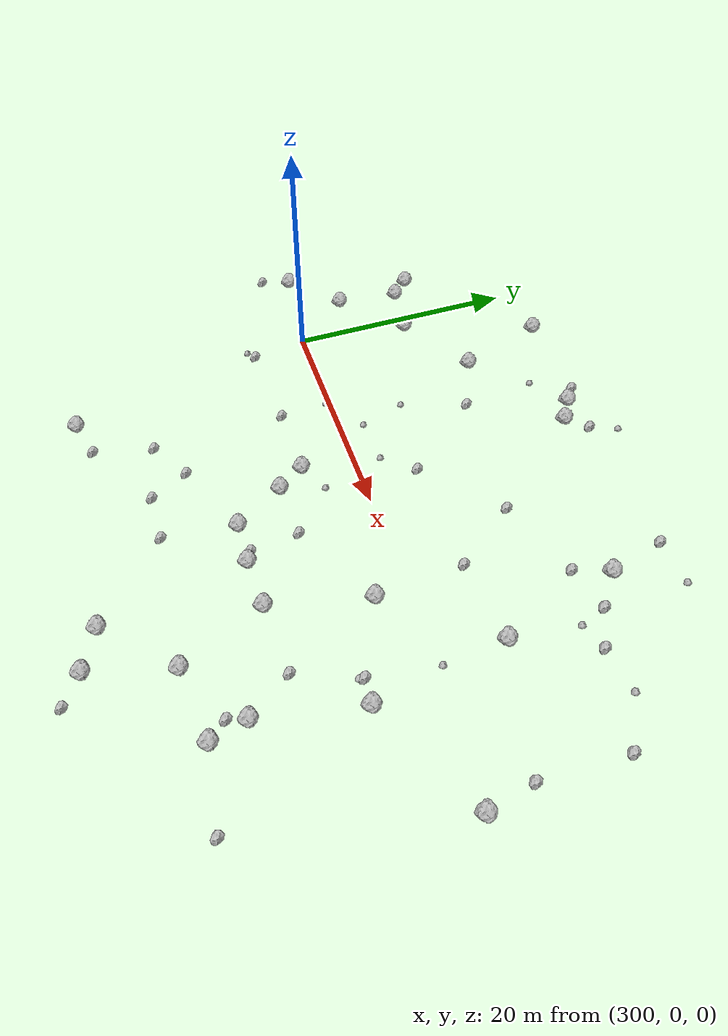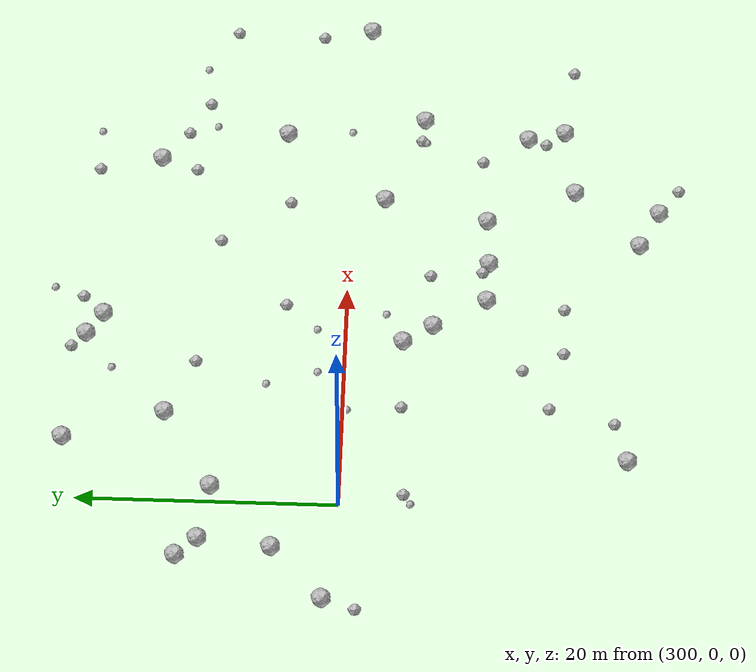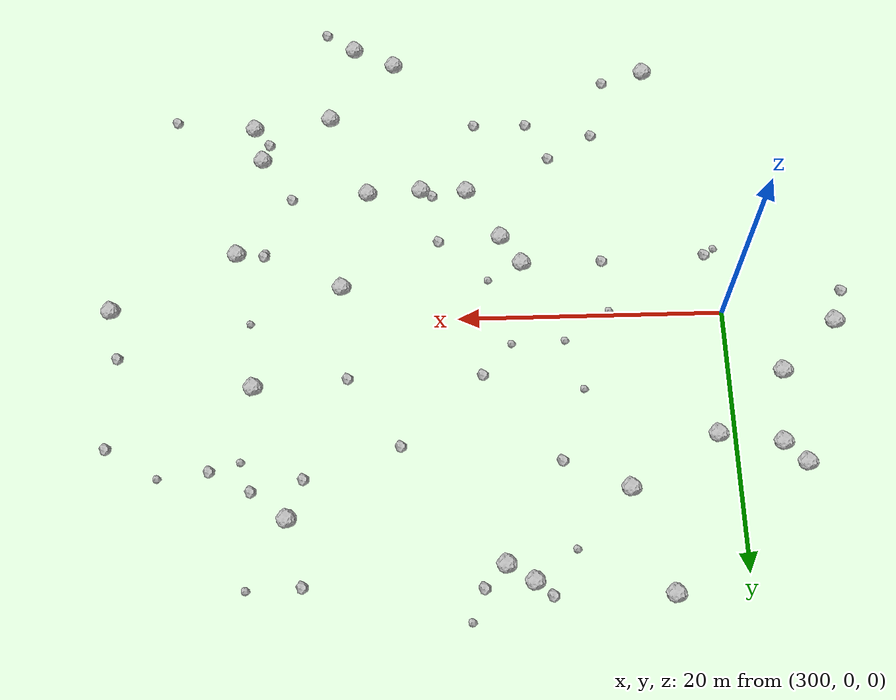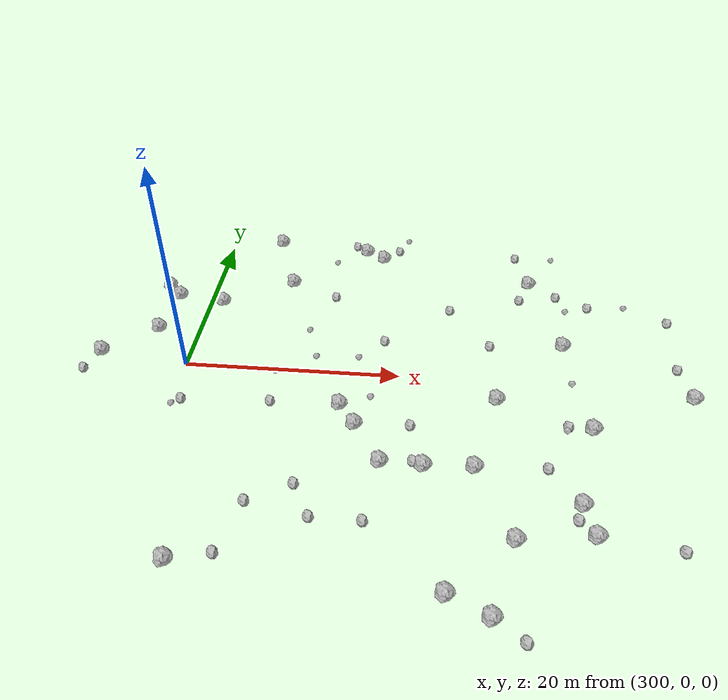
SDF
<sdf version="1.6">
 <world name="default">
  <include><uri>model://sun</uri></include>
  <model name="rock1_8_2">
   <include><uri>model://rock1</uri><pose>307.8987200101054 13.677612245132515 0.5 0 0 0</pose></include>
  </model>
  <model name="rock1_8_3">
   <include><uri>model://rock1</uri><pose>335.30053538238235 -14.121122902779817 0.5 0 0 0</pose></include>
  </model>
  <model name="rock1_8_4">
   <include><uri>model://rock1</uri><pose>322.7328655205642 -11.065780976872425 0.5 0 0 0</pose></include>
  </model>
  <model name="rock1_8_5">
   <include><uri>model://rock1</uri><pose>335.2609601538134 5.341475340433618 0.5 0 0 0</pose></include>
  </model>
  <model name="rock1_8_6">
   <include><uri>model://rock1</uri><pose>316.6007874839098 -6.777972014625714 0.5 0 0 0</pose></include>
  </model>
  <model name="rock1_8_7">
   <include><uri>model://rock1</uri><pose>346.3067477297315 -1.1418352276143438 0.5 0 0 0</pose></include>
  </model>
  <model name="rock1_8_8">
   <include><uri>model://rock1</uri><pose>315.05094061615404 20.238163077797978 0.5 0 0 0</pose></include>
  </model>
  <model name="rock1_8_9">
   <include><uri>model://rock1</uri><pose>319.155938399444 -10.931510715643839 0.5 0 0 0</pose></include>
  </model>
  <model name="rock1_8_10">
   <include><uri>model://rock1</uri><pose>316.98939838749845 19.00576557208172 0.5 0 0 0</pose></include>
  </model>
  <model name="rock1_8_11">
   <include><uri>model://rock1</uri><pose>326.9104070920739 -10.888995078216059 0.5 0 0 0</pose></include>
  </model>
  <model name="rock1_8_12">
   <include><uri>model://rock1</uri><pose>332.46330648916904 15.406056508772338 0.5 0 0 0</pose></include>
  </model>
  <model name="rock1_8_13">
   <include><uri>model://rock1</uri><pose>315.03711054912407 -4.469501557209071 0.5 0 0 0</pose></include>
  </model>
  <model name="rock1_8_14">
   <include><uri>model://rock1</uri><pose>295.0785875616474 12.075646983830502 0.5 0 0 0</pose></include>
  </model>
  <model name="rock1_8_15">
   <include><uri>model://rock1</uri><pose>328.12565731083356 -24.57933235089385 0.5 0 0 0</pose></include>
  </model>
  <model name="rock1_8_16">
   <include><uri>model://rock1</uri><pose>324.8726492648152 -22.98048724252999 0.5 0 0 0</pose></include>
  </model>
  <model name="rock1_8_17">
   <include><uri>model://rock1</uri><pose>304.4386401520131 -21.80413476948971 0.5 0 0 0</pose></include>
  </model>
  <model name="rock1_8_18">
   <include><uri>model://rock1</uri><pose>328.84981466729505 -2.696847769629315 0.5 0 0 0</pose></include>
  </model>
  <model name="rock1_8_19">
   <include><uri>model://rock1</uri><pose>336.0449201320297 -17.08279805578639 0.5 0 0 0</pose></include>
  </model>
  <model name="rock1_8_20">
   <include><uri>model://rock1</uri><pose>336.9887423286614 -5.73203135378208 0.5 0 0 0</pose></include>
  </model>
  <model name="rock1_8_21">
   <include><uri>model://rock1</uri><pose>301.27748362622685 9.778372694723366 0.5 0 0 0</pose></include>
  </model>
  <model name="rock1_8_22">
   <include><uri>model://rock1</uri><pose>296.621950881206 10.487757390003836 0.5 0 0 0</pose></include>
  </model>
  <model name="rock1_8_23">
   <include><uri>model://rock1</uri><pose>291.635619272378 0.9822099176847132 0.5 0 0 0</pose></include>
  </model>
  <model name="rock1_8_24">
   <include><uri>model://rock1</uri><pose>305.3609016506511 21.34681964827888 0.5 0 0 0</pose></include>
  </model>
  <model name="rock1_8_25">
   <include><uri>model://rock1</uri><pose>329.9841820249418 -17.885806578884164 0.5 0 0 0</pose></include>
  </model>
  <model name="rock1_8_26">
   <include><uri>model://rock1</uri><pose>296.00349796119735 4.9440291429286205 0.5 0 0 0</pose></include>
  </model>
  <model name="rock2_8_0">
   <include><uri>model://rock2</uri><pose>318.25594710946575 4.7209897732377115 0.3 0 0 0</pose></include>
  </model>
  <model name="rock2_8_1">
   <include><uri>model://rock2</uri><pose>338.15018581086827 11.754729605339122 0.3 0 0 0</pose></include>
  </model>
  <model name="rock2_8_2">
   <include><uri>model://rock2</uri><pose>331.2183444490971 20.294937242855795 0.3 0 0 0</pose></include>
  </model>
  <model name="rock2_8_3">
   <include><uri>model://rock2</uri><pose>324.35706302384034 10.165233272420366 0.3 0 0 0</pose></include>
  </model>
  <model name="rock2_8_4">
   <include><uri>model://rock2</uri><pose>331.371214392701 12.488991496768072 0.3 0 0 0</pose></include>
  </model>
  <model name="rock2_8_5">
   <include><uri>model://rock2</uri><pose>314.2562073593876 -16.98505246632206 0.3 0 0 0</pose></include>
  </model>
  <model name="rock2_8_6">
   <include><uri>model://rock2</uri><pose>290.76961373258223 -1.5411901880598293 0.3 0 0 0</pose></include>
  </model>
  <model name="rock2_8_7">
   <include><uri>model://rock2</uri><pose>312.66943102480786 11.513283062584541 0.3 0 0 0</pose></include>
  </model>
  <model name="rock2_8_8">
   <include><uri>model://rock2</uri><pose>312.5701982520301 -13.803912552131557 0.3 0 0 0</pose></include>
  </model>
  <model name="rock2_8_9">
   <include><uri>model://rock2</uri><pose>318.56636877684133 20.659955630338985 0.3 0 0 0</pose></include>
  </model>
  <model name="rock2_8_10">
   <include><uri>model://rock2</uri><pose>345.4719885989042 2.7683884379518346 0.3 0 0 0</pose></include>
  </model>
  <model name="rock2_8_11">
   <include><uri>model://rock2</uri><pose>334.80566130684394 -15.589354353811588 0.3 0 0 0</pose></include>
  </model>
  <model name="rock2_8_12">
   <include><uri>model://rock2</uri><pose>328.28579371824213 4.797384461588933 0.3 0 0 0</pose></include>
  </model>
  <model name="rock2_8_13">
   <include><uri>model://rock2</uri><pose>318.4178659279089 -17.040719428442756 0.3 0 0 0</pose></include>
  </model>
  <model name="rock2_8_14">
   <include><uri>model://rock2</uri><pose>321.39596988219574 -6.516039936434815 0.3 0 0 0</pose></include>
  </model>
  <model name="rock2_8_15">
   <include><uri>model://rock2</uri><pose>330.3942990159628 -26.203335706213075 0.3 0 0 0</pose></include>
  </model>
  <model name="rock2_8_16">
   <include><uri>model://rock2</uri><pose>334.87921323051313 -5.542084328737701 0.3 0 0 0</pose></include>
  </model>
  <model name="rock2_8_17">
   <include><uri>model://rock2</uri><pose>313.8196133066194 21.283144411589454 0.3 0 0 0</pose></include>
  </model>
  <model name="rock2_8_18">
   <include><uri>model://rock2</uri><pose>321.84983720704923 -10.603856353744774 0.3 0 0 0</pose></include>
  </model>
  <model name="rock2_8_19">
   <include><uri>model://rock2</uri><pose>300.9216546679749 -4.8626191068050275 0.3 0 0 0</pose></include>
  </model>
  <model name="rock2_8_20">
   <include><uri>model://rock2</uri><pose>308.8637750769208 -4.5060785047933685 0.3 0 0 0</pose></include>
  </model>
  <model name="rock2_8_21">
   <include><uri>model://rock2</uri><pose>345.7599882075076 9.866318529905314 0.3 0 0 0</pose></include>
  </model>
  <model name="rock2_8_22">
   <include><uri>model://rock2</uri><pose>342.3236364209146 -17.886513375455635 0.3 0 0 0</pose></include>
  </model>
  <model name="rock2_8_23">
   <include><uri>model://rock2</uri><pose>332.8540961800098 -10.511735469749777 0.3 0 0 0</pose></include>
  </model>
  <model name="rock2_8_24">
   <include><uri>model://rock2</uri><pose>307.80912435618666 -20.879300575499656 0.3 0 0 0</pose></include>
  </model>
  <model name="rock2_8_25">
   <include><uri>model://rock2</uri><pose>335.1058924636651 13.324029979986307 0.3 0 0 0</pose></include>
  </model>
  <model name="rock2_8_26">
   <include><uri>model://rock2</uri><pose>309.03402849166685 -15.862412302212835 0.3 0 0 0</pose></include>
  </model>
  <model name="rock3_8_0">
   <include><uri>model://rock3</uri><pose>334.76222174056534 -5.94758186002646 0.2 0 0 0</pose></include>
  </model>
  <model name="rock3_8_1">
   <include><uri>model://rock3</uri><pose>308.5365142166345 -0.35696541003263604 0.2 0 0 0</pose></include>
  </model>
  <model name="rock3_8_2">
   <include><uri>model://rock3</uri><pose>311.998134599918 2.0282214413134767 0.2 0 0 0</pose></include>
  </model>
  <model name="rock3_8_3">
   <include><uri>model://rock3</uri><pose>341.84314648261557 12.147008874059871 0.2 0 0 0</pose></include>
  </model>
  <model name="rock3_8_4">
   <include><uri>model://rock3</uri><pose>310.7716042387775 5.955251520353336 0.2 0 0 0</pose></include>
  </model>
  <model name="rock3_8_5">
   <include><uri>model://rock3</uri><pose>300.12590467976156 -5.439883804434551 0.2 0 0 0</pose></include>
  </model>
  <model name="rock3_8_6">
   <include><uri>model://rock3</uri><pose>335.90200656001133 11.046943851186619 0.2 0 0 0</pose></include>
  </model>
  <model name="rock3_8_7">
   <include><uri>model://rock3</uri><pose>335.664632336076 0.09233266032578058 0.2 0 0 0</pose></include>
  </model>
  <model name="rock3_8_8">
   <include><uri>model://rock3</uri><pose>317.6362525708906 -3.1539039135210665 0.2 0 0 0</pose></include>
  </model>
  <model name="rock3_8_9">
   <include><uri>model://rock3</uri><pose>316.0119748574824 2.1952288340877075 0.2 0 0 0</pose></include>
  </model>
  <model name="rock3_8_10">
   <include><uri>model://rock3</uri><pose>311.95419899155246 17.996150081232877 0.2 0 0 0</pose></include>
  </model>
  <model name="rock3_8_11">
   <include><uri>model://rock3</uri><pose>335.1181978517786 20.404019692457524 0.2 0 0 0</pose></include>
  </model>
  <model name="rock3_8_12">
   <include><uri>model://rock3</uri><pose>319.43290329453725 22.956132867851082 0.2 0 0 0</pose></include>
  </model>
 </world>
</sdf>
